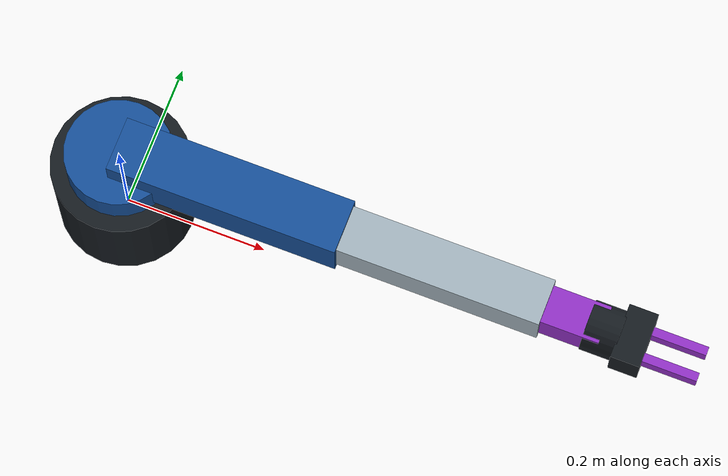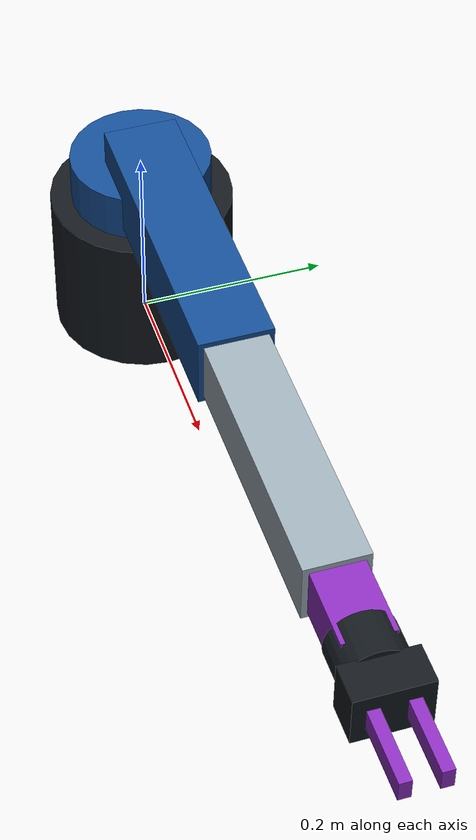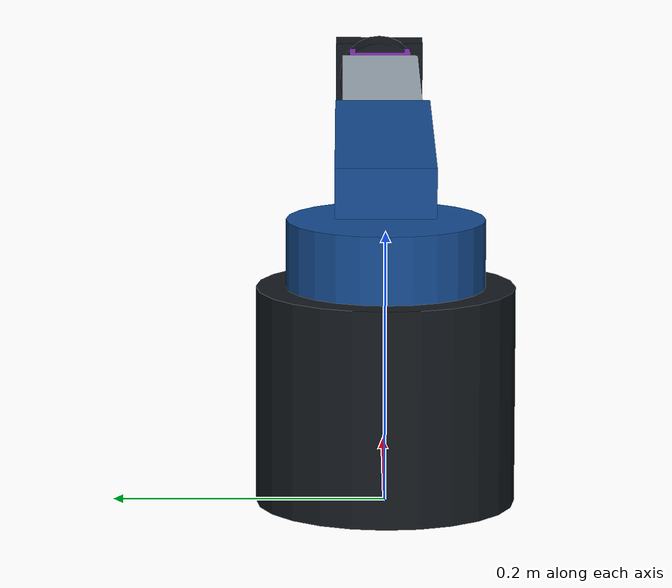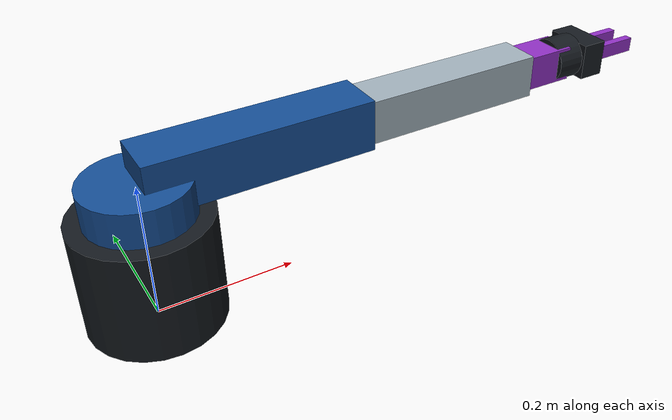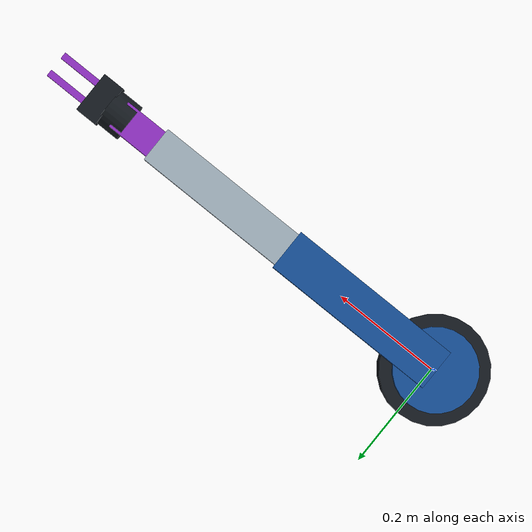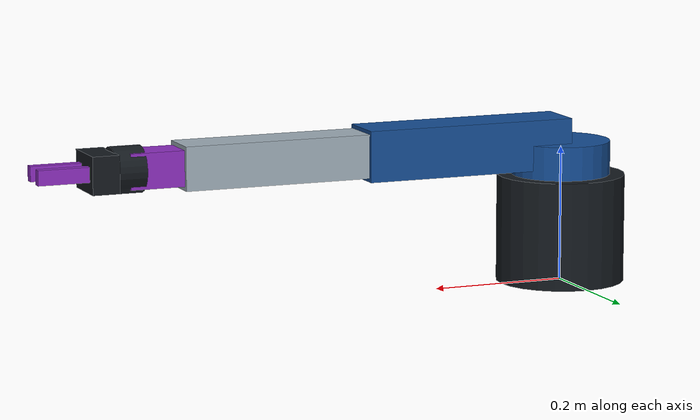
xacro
<?xml version="1.0"?>
<robot xmlns:xacro="http://www.ros.org/wiki/xacro" name="sorting_cell_arm">
  <xacro:property name="blue" value="0.08 0.30 0.58 1"/>
  <xacro:property name="dark" value="0.08 0.10 0.12 1"/>
  <xacro:property name="silver" value="0.62 0.68 0.72 1"/>
  <!-- Purple accents stay outside the red/orange perception masks. -->
  <xacro:property name="yellow" value="0.55 0.18 0.75 1"/>

  <link name="world"/>
  <joint name="world_to_base" type="fixed">
    <parent link="world"/>
    <child link="base_link"/>
    <origin xyz="0 0 0"/>
  </joint>

  <xacro:macro name="box_link" params="name size xyz rgba mass">
    <link name="${name}">
      <inertial>
        <origin xyz="${xyz}"/>
        <mass value="${mass}"/>
        <inertia ixx="0.01" ixy="0" ixz="0" iyy="0.01" iyz="0" izz="0.01"/>
      </inertial>
      <visual>
        <origin xyz="${xyz}"/>
        <geometry><box size="${size}"/></geometry>
        <material name="${name}_material"><color rgba="${rgba}"/></material>
      </visual>
      <collision>
        <origin xyz="${xyz}"/>
        <geometry><box size="${size}"/></geometry>
      </collision>
    </link>
  </xacro:macro>

  <link name="base_link">
    <inertial>
      <origin xyz="0 0 0.08"/>
      <mass value="8.0"/>
      <inertia ixx="0.06" ixy="0" ixz="0" iyy="0.06" iyz="0" izz="0.08"/>
    </inertial>
    <visual>
      <origin xyz="0 0 0.08"/>
      <geometry><cylinder radius="0.095" length="0.16"/></geometry>
      <material name="base_dark"><color rgba="${dark}"/></material>
    </visual>
    <collision>
      <origin xyz="0 0 0.08"/>
      <geometry><cylinder radius="0.095" length="0.16"/></geometry>
    </collision>
  </link>

  <link name="base_yaw_link">
    <inertial>
      <origin xyz="0 0 0.025"/>
      <mass value="2.2"/>
      <inertia ixx="0.015" ixy="0" ixz="0" iyy="0.015" iyz="0" izz="0.02"/>
    </inertial>
    <visual>
      <origin xyz="0 0 0.025"/>
      <geometry><cylinder radius="0.073" length="0.05"/></geometry>
      <material name="yaw_blue"><color rgba="${blue}"/></material>
    </visual>
    <collision>
      <origin xyz="0 0 0.025"/>
      <geometry><cylinder radius="0.073" length="0.05"/></geometry>
    </collision>
  </link>
  <joint name="base_yaw_joint" type="revolute">
    <parent link="base_link"/>
    <child link="base_yaw_link"/>
    <origin xyz="0 0 0.16"/>
    <axis xyz="0 0 1"/>
    <limit lower="-2.967" upper="2.967" effort="90" velocity="1.6"/>
    <dynamics damping="1.2" friction="0.08"/>
  </joint>

  <xacro:box_link name="upper_arm_link" size="0.32 0.075 0.075" xyz="0.16 0 0" rgba="${blue}" mass="3.0"/>
  <joint name="shoulder_joint" type="revolute">
    <parent link="base_yaw_link"/>
    <child link="upper_arm_link"/>
    <origin xyz="0 0 0.05"/>
    <!-- Match the analytical model: positive pitch raises a +X link. -->
    <axis xyz="0 -1 0"/>
    <limit lower="-1.40" upper="1.92" effort="110" velocity="1.3"/>
    <dynamics damping="1.4" friction="0.1"/>
  </joint>

  <xacro:box_link name="forearm_link" size="0.28 0.064 0.064" xyz="0.14 0 0" rgba="${silver}" mass="2.2"/>
  <joint name="elbow_joint" type="revolute">
    <parent link="upper_arm_link"/>
    <child link="forearm_link"/>
    <origin xyz="0.32 0 0"/>
    <axis xyz="0 -1 0"/>
    <limit lower="-2.62" upper="2.62" effort="85" velocity="1.5"/>
    <dynamics damping="1.0" friction="0.07"/>
  </joint>

  <xacro:box_link name="wrist_pitch_link" size="0.08 0.052 0.052" xyz="0.04 0 0" rgba="${yellow}" mass="0.85"/>
  <joint name="wrist_pitch_joint" type="revolute">
    <parent link="forearm_link"/>
    <child link="wrist_pitch_link"/>
    <origin xyz="0.28 0 0"/>
    <axis xyz="0 -1 0"/>
    <limit lower="-2.88" upper="2.88" effort="45" velocity="2.0"/>
    <dynamics damping="0.65" friction="0.04"/>
  </joint>

  <link name="wrist_roll_link">
    <inertial>
      <mass value="0.55"/>
      <inertia ixx="0.004" ixy="0" ixz="0" iyy="0.004" iyz="0" izz="0.004"/>
    </inertial>
    <visual>
      <geometry><cylinder radius="0.034" length="0.045"/></geometry>
      <origin rpy="0 1.570796 0"/>
      <material name="wrist_dark"><color rgba="${dark}"/></material>
    </visual>
    <collision>
      <geometry><cylinder radius="0.034" length="0.045"/></geometry>
      <origin rpy="0 1.570796 0"/>
    </collision>
  </link>
  <joint name="wrist_roll_joint" type="revolute">
    <parent link="wrist_pitch_link"/>
    <child link="wrist_roll_link"/>
    <origin xyz="0.08 0 0"/>
    <axis xyz="1 0 0"/>
    <limit lower="-3.14" upper="3.14" effort="30" velocity="2.4"/>
    <dynamics damping="0.4" friction="0.03"/>
  </joint>

  <xacro:box_link name="tool_flange" size="0.04 0.075 0.055" xyz="0.02 0 0" rgba="${dark}" mass="0.45"/>
  <joint name="tool_fixed_joint" type="fixed">
    <parent link="wrist_roll_link"/>
    <child link="tool_flange"/>
    <origin xyz="0.02 0 0"/>
  </joint>

  <xacro:box_link name="left_finger_link" size="0.075 0.012 0.022" xyz="0.0375 0 0" rgba="${yellow}" mass="0.10"/>
  <joint name="left_finger_joint" type="prismatic">
    <parent link="tool_flange"/>
    <child link="left_finger_link"/>
    <origin xyz="0.04 0 0"/>
    <axis xyz="0 1 0"/>
    <limit lower="0.003" upper="0.034" effort="35" velocity="0.12"/>
    <dynamics damping="0.15" friction="0.02"/>
  </joint>

  <xacro:box_link name="right_finger_link" size="0.075 0.012 0.022" xyz="0.0375 0 0" rgba="${yellow}" mass="0.10"/>
  <joint name="right_finger_joint" type="prismatic">
    <parent link="tool_flange"/>
    <child link="right_finger_link"/>
    <origin xyz="0.04 0 0"/>
    <axis xyz="0 -1 0"/>
    <limit lower="0.003" upper="0.034" effort="35" velocity="0.12"/>
    <mimic joint="left_finger_joint" multiplier="1.0" offset="0.0"/>
    <dynamics damping="0.15" friction="0.02"/>
  </joint>

  <link name="tool0"/>
  <joint name="tool0_fixed_joint" type="fixed">
    <parent link="tool_flange"/>
    <child link="tool0"/>
    <origin xyz="0.10 0 0"/>
  </joint>

  <ros2_control name="GazeboSimSystem" type="system">
    <hardware>
      <plugin>gz_ros2_control/GazeboSimSystem</plugin>
    </hardware>
    <joint name="base_yaw_joint">
      <command_interface name="position"><param name="min">-2.967</param><param name="max">2.967</param></command_interface>
      <state_interface name="position"><param name="initial_value">0.0</param></state_interface>
      <state_interface name="velocity"/>
    </joint>
    <joint name="shoulder_joint">
      <command_interface name="position"><param name="min">-1.40</param><param name="max">1.92</param></command_interface>
      <state_interface name="position"><param name="initial_value">0.80</param></state_interface>
      <state_interface name="velocity"/>
    </joint>
    <joint name="elbow_joint">
      <command_interface name="position"><param name="min">-2.62</param><param name="max">2.62</param></command_interface>
      <state_interface name="position"><param name="initial_value">-1.50</param></state_interface>
      <state_interface name="velocity"/>
    </joint>
    <joint name="wrist_pitch_joint">
      <command_interface name="position"><param name="min">-2.88</param><param name="max">2.88</param></command_interface>
      <state_interface name="position"><param name="initial_value">0.70</param></state_interface>
      <state_interface name="velocity"/>
    </joint>
    <joint name="wrist_roll_joint">
      <command_interface name="position"><param name="min">-3.14</param><param name="max">3.14</param></command_interface>
      <state_interface name="position"><param name="initial_value">0.0</param></state_interface>
      <state_interface name="velocity"/>
    </joint>
    <joint name="left_finger_joint">
      <command_interface name="position"><param name="min">0.003</param><param name="max">0.034</param></command_interface>
      <state_interface name="position"><param name="initial_value">0.032</param></state_interface>
      <state_interface name="velocity"/>
    </joint>
    <joint name="right_finger_joint">
      <state_interface name="position"/>
      <state_interface name="velocity"/>
    </joint>
  </ros2_control>

  <gazebo>
    <plugin filename="libgz_ros2_control-system.so" name="gz_ros2_control::GazeboSimROS2ControlPlugin">
      <parameters>$(find sorting_cell_gazebo)/config/controllers.yaml</parameters>
      <hold_joints>true</hold_joints>
      <position_proportional_gain>0.8</position_proportional_gain>
    </plugin>
  </gazebo>
</robot>
